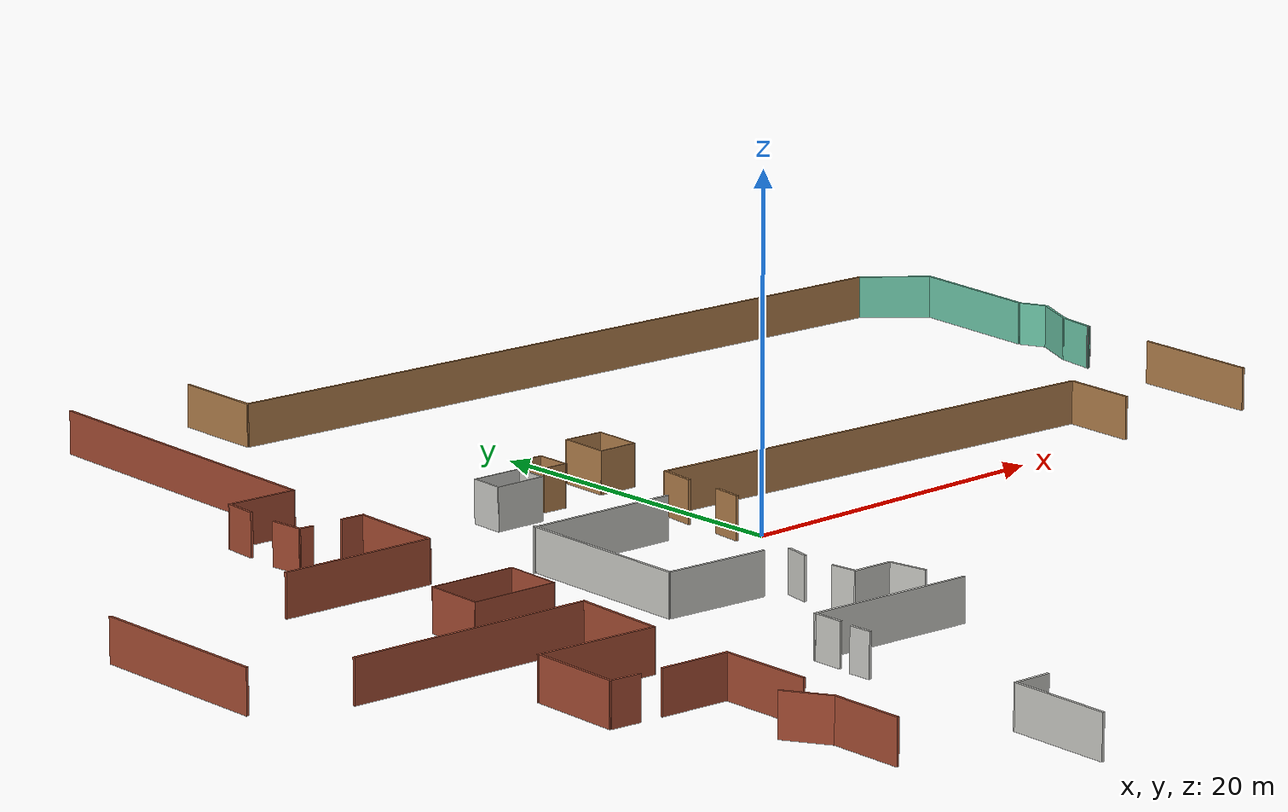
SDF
<?xml version='1.0'?>
<sdf version='1.6'>
  <model name='riseholme_encolsure'>
    <pose frame=''>-0.148903 -0.384247 0 0 -0 0</pose>
    <link name='Wall_10'>
      <collision name='Wall_10_Collision'>
        <geometry>
          <box>
            <size>4.40408 0.15 2.5</size>
          </box>
        </geometry>
        <pose frame=''>0 0 1.25 0 -0 0</pose>
      </collision>
      <visual name='Wall_10_Visual'>
        <pose frame=''>0 0 1.25 0 -0 0</pose>
        <geometry>
          <box>
            <size>4.40408 0.15 2.5</size>
          </box>
        </geometry>
        <material>
          <script>
            <uri>file://media/materials/scripts/gazebo.material</uri>
            <name>Gazebo/Grey</name>
          </script>
          <ambient>0.435294 0.796078 0.67451 1</ambient>
        </material>
        <meta>
          <layer>0</layer>
        </meta>
      </visual>
      <pose frame=''>37.9809 28.2217 0 0 -0 -0.71569</pose>
    </link>
    <link name='Wall_100'>
      <collision name='Wall_100_Collision'>
        <geometry>
          <box>
            <size>1.38035 0.15 2.5</size>
          </box>
        </geometry>
        <pose frame=''>0 0 1.25 0 -0 0</pose>
      </collision>
      <visual name='Wall_100_Visual'>
        <pose frame=''>0 0 1.25 0 -0 0</pose>
        <geometry>
          <box>
            <size>1.38035 0.15 2.5</size>
          </box>
        </geometry>
        <material>
          <script>
            <uri>file://media/materials/scripts/gazebo.material</uri>
            <name>Gazebo/CeilingTiled</name>
          </script>
          <ambient>1 1 1 1</ambient>
        </material>
        <meta>
          <layer>0</layer>
        </meta>
      </visual>
      <pose frame=''>-13.3343 -20.6396 0 0 -0 -1.5708</pose>
    </link>
    <link name='Wall_102'>
      <collision name='Wall_102_Collision'>
        <geometry>
          <box>
            <size>5.25909 0.07 2.5</size>
          </box>
        </geometry>
        <pose frame=''>0 0 1.25 0 -0 0</pose>
      </collision>
      <visual name='Wall_102_Visual'>
        <pose frame=''>0 0 1.25 0 -0 0</pose>
        <geometry>
          <box>
            <size>5.25909 0.07 2.5</size>
          </box>
        </geometry>
        <material>
          <script>
            <uri>file://media/materials/scripts/gazebo.material</uri>
            <name>Gazebo/Bricks</name>
          </script>
          <ambient>1 1 1 1</ambient>
        </material>
        <meta>
          <layer>0</layer>
        </meta>
      </visual>
      <pose frame=''>-21.5336 -0.928753 0 0 -0 -0.039709</pose>
    </link>
    <link name='Wall_103'>
      <collision name='Wall_103_Collision'>
        <geometry>
          <box>
            <size>3.49121 0.07 2.5</size>
          </box>
        </geometry>
        <pose frame=''>0 0 1.25 0 -0 0</pose>
      </collision>
      <visual name='Wall_103_Visual'>
        <pose frame=''>0 0 1.25 0 -0 0</pose>
        <geometry>
          <box>
            <size>3.49121 0.07 2.5</size>
          </box>
        </geometry>
        <material>
          <script>
            <uri>file://media/materials/scripts/gazebo.material</uri>
            <name>Gazebo/Bricks</name>
          </script>
          <ambient>1 1 1 1</ambient>
        </material>
        <meta>
          <layer>0</layer>
        </meta>
      </visual>
      <pose frame=''>-19.0441 -2.73925 0 0 -0 -1.63105</pose>
    </link>
    <link name='Wall_104'>
      <collision name='Wall_104_Collision'>
        <geometry>
          <box>
            <size>5.24692 0.07 2.5</size>
          </box>
        </geometry>
        <pose frame=''>0 0 1.25 0 -0 0</pose>
      </collision>
      <visual name='Wall_104_Visual'>
        <pose frame=''>0 0 1.25 0 -0 0</pose>
        <geometry>
          <box>
            <size>5.24692 0.07 2.5</size>
          </box>
        </geometry>
        <material>
          <script>
            <uri>file://media/materials/scripts/gazebo.material</uri>
            <name>Gazebo/Bricks</name>
          </script>
          <ambient>1 1 1 1</ambient>
        </material>
        <meta>
          <layer>0</layer>
        </meta>
      </visual>
      <pose frame=''>-21.7333 -4.34992 0 0 -0 3.10417</pose>
    </link>
    <link name='Wall_105'>
      <collision name='Wall_105_Collision'>
        <geometry>
          <box>
            <size>3.49429 0.07 2.5</size>
          </box>
        </geometry>
        <pose frame=''>0 0 1.25 0 -0 0</pose>
      </collision>
      <visual name='Wall_105_Visual'>
        <pose frame=''>0 0 1.25 0 -0 0</pose>
        <geometry>
          <box>
            <size>3.49429 0.07 2.5</size>
          </box>
        </geometry>
        <material>
          <script>
            <uri>file://media/materials/scripts/gazebo.material</uri>
            <name>Gazebo/Bricks</name>
          </script>
          <ambient>1 1 1 1</ambient>
        </material>
        <meta>
          <layer>0</layer>
        </meta>
      </visual>
      <pose frame=''>-24.2229 -2.53786 0 0 -0 1.51436</pose>
    </link>
    <link name='Wall_11'>
      <collision name='Wall_11_Collision'>
        <geometry>
          <box>
            <size>8.22495 0.15 2.5</size>
          </box>
        </geometry>
        <pose frame=''>0 0 1.25 0 -0 0</pose>
      </collision>
      <visual name='Wall_11_Visual'>
        <pose frame=''>0 0 1.25 0 -0 0</pose>
        <geometry>
          <box>
            <size>8.22495 0.15 2.5</size>
          </box>
        </geometry>
        <material>
          <script>
            <uri>file://media/materials/scripts/gazebo.material</uri>
            <name>Gazebo/Grey</name>
          </script>
          <ambient>0.435294 0.796078 0.67451 1</ambient>
        </material>
        <meta>
          <layer>0</layer>
        </meta>
      </visual>
      <pose frame=''>39.2604 22.8017 0 0 -0 -1.6515</pose>
    </link>
    <link name='Wall_12'>
      <collision name='Wall_12_Collision'>
        <geometry>
          <box>
            <size>1.81774 0.15 2.5</size>
          </box>
        </geometry>
        <pose frame=''>0 0 1.25 0 -0 0</pose>
      </collision>
      <visual name='Wall_12_Visual'>
        <pose frame=''>0 0 1.25 0 -0 0</pose>
        <geometry>
          <box>
            <size>1.81774 0.15 2.5</size>
          </box>
        </geometry>
        <material>
          <script>
            <uri>file://media/materials/scripts/gazebo.material</uri>
            <name>Gazebo/Grey</name>
          </script>
          <ambient>0.435294 0.796078 0.67451 1</ambient>
        </material>
        <meta>
          <layer>0</layer>
        </meta>
      </visual>
      <pose frame=''>39.2604 18.0097 0 0 -0 -1.16969</pose>
    </link>
    <link name='Wall_13'>
      <collision name='Wall_13_Collision'>
        <geometry>
          <box>
            <size>3.14637 0.15 2.5</size>
          </box>
        </geometry>
        <pose frame=''>0 0 1.25 0 -0 0</pose>
      </collision>
      <visual name='Wall_13_Visual'>
        <pose frame=''>0 0 1.25 0 -0 0</pose>
        <geometry>
          <box>
            <size>3.14637 0.15 2.5</size>
          </box>
        </geometry>
        <material>
          <script>
            <uri>file://media/materials/scripts/gazebo.material</uri>
            <name>Gazebo/Grey</name>
          </script>
          <ambient>0.435294 0.796078 0.67451 1</ambient>
        </material>
        <meta>
          <layer>0</layer>
        </meta>
      </visual>
      <pose frame=''>38.9349 15.8932 0 0 -0 -2.02041</pose>
    </link>
    <link name='Wall_14'>
      <collision name='Wall_14_Collision'>
        <geometry>
          <box>
            <size>2.45986 0.15 2.5</size>
          </box>
        </geometry>
        <pose frame=''>0 0 1.25 0 -0 0</pose>
      </collision>
      <visual name='Wall_14_Visual'>
        <pose frame=''>0 0 1.25 0 -0 0</pose>
        <geometry>
          <box>
            <size>2.45986 0.15 2.5</size>
          </box>
        </geometry>
        <material>
          <script>
            <uri>file://media/materials/scripts/gazebo.material</uri>
            <name>Gazebo/Grey</name>
          </script>
          <ambient>0.435294 0.796078 0.67451 1</ambient>
        </material>
        <meta>
          <layer>0</layer>
        </meta>
      </visual>
      <pose frame=''>38.0974 13.4042 0 0 -0 -1.73296</pose>
    </link>
    <link name='Wall_15'>
      <collision name='Wall_15_Collision'>
        <geometry>
          <box>
            <size>0.16 0.15 2.5</size>
          </box>
        </geometry>
        <pose frame=''>0 0 1.25 0 -0 0</pose>
      </collision>
      <visual name='Wall_15_Visual'>
        <pose frame=''>0 0 1.25 0 -0 0</pose>
        <geometry>
          <box>
            <size>0.16 0.15 2.5</size>
          </box>
        </geometry>
        <material>
          <script>
            <uri>file://media/materials/scripts/gazebo.material</uri>
            <name>Gazebo/Grey</name>
          </script>
          <ambient>1 1 1 1</ambient>
        </material>
        <meta>
          <layer>0</layer>
        </meta>
      </visual>
      <pose frame=''>37.9161 12.2642 0 0 -0 -0.015821</pose>
    </link>
    <link name='Wall_17'>
      <collision name='Wall_17_Collision'>
        <geometry>
          <box>
            <size>7.7914 0.15 2.5</size>
          </box>
        </geometry>
        <pose frame=''>0 0 1.25 0 -0 0</pose>
      </collision>
      <visual name='Wall_17_Visual'>
        <pose frame=''>0 0 1.25 0 -0 0</pose>
        <geometry>
          <box>
            <size>7.7914 0.15 2.5</size>
          </box>
        </geometry>
        <material>
          <script>
            <uri>file://media/materials/scripts/gazebo.material</uri>
            <name>Gazebo/Wood</name>
          </script>
          <ambient>1 1 1 1</ambient>
        </material>
        <meta>
          <layer>0</layer>
        </meta>
      </visual>
      <pose frame=''>37.7484 3.75021 0 0 -0 -1.62562</pose>
    </link>
    <link name='Wall_19'>
      <collision name='Wall_19_Collision'>
        <geometry>
          <box>
            <size>4.48297 0.15 2.5</size>
          </box>
        </geometry>
        <pose frame=''>0 0 1.25 0 -0 0</pose>
      </collision>
      <visual name='Wall_19_Visual'>
        <pose frame=''>0 0 1.25 0 -0 0</pose>
        <geometry>
          <box>
            <size>4.48297 0.15 2.5</size>
          </box>
        </geometry>
        <material>
          <script>
            <uri>file://media/materials/scripts/gazebo.material</uri>
            <name>Gazebo/Wood</name>
          </script>
          <ambient>1 1 1 1</ambient>
        </material>
        <meta>
          <layer>0</layer>
        </meta>
      </visual>
      <pose frame=''>28.3339 2.41776 0 0 -0 1.51709</pose>
    </link>
    <link name='Wall_20'>
      <collision name='Wall_20_Collision'>
        <geometry>
          <box>
            <size>29.5845 0.15 2.5</size>
          </box>
        </geometry>
        <pose frame=''>0 0 1.25 0 -0 0</pose>
      </collision>
      <visual name='Wall_20_Visual'>
        <pose frame=''>0 0 1.25 0 -0 0</pose>
        <geometry>
          <box>
            <size>29.5845 0.15 2.5</size>
          </box>
        </geometry>
        <material>
          <script>
            <uri>file://media/materials/scripts/gazebo.material</uri>
            <name>Gazebo/Wood</name>
          </script>
          <ambient>1 1 1 1</ambient>
        </material>
        <meta>
          <layer>0</layer>
        </meta>
      </visual>
      <pose frame=''>13.7719 5.65117 0 0 -0 3.06882</pose>
    </link>
    <link name='Wall_21'>
      <collision name='Wall_21_Collision'>
        <geometry>
          <box>
            <size>2.21023 0.15 2.5</size>
          </box>
        </geometry>
        <pose frame=''>0 0 1.25 0 -0 0</pose>
      </collision>
      <visual name='Wall_21_Visual'>
        <pose frame=''>0 0 1.25 0 -0 0</pose>
        <geometry>
          <box>
            <size>2.21023 0.15 2.5</size>
          </box>
        </geometry>
        <material>
          <script>
            <uri>file://media/materials/scripts/gazebo.material</uri>
            <name>Gazebo/Wood</name>
          </script>
          <ambient>1 1 1 1</ambient>
        </material>
        <meta>
          <layer>0</layer>
        </meta>
      </visual>
      <pose frame=''>-1.02272 5.6977 0 0 -0 -1.68395</pose>
    </link>
    <link name='Wall_23'>
      <collision name='Wall_23_Collision'>
        <geometry>
          <box>
            <size>1.78894 0.15 2.5</size>
          </box>
        </geometry>
        <pose frame=''>0 0 1.25 0 -0 0</pose>
      </collision>
      <visual name='Wall_23_Visual'>
        <pose frame=''>0 0 1.25 0 -0 0</pose>
        <geometry>
          <box>
            <size>1.78894 0.15 2.5</size>
          </box>
        </geometry>
        <material>
          <script>
            <uri>file://media/materials/scripts/gazebo.material</uri>
            <name>Gazebo/Wood</name>
          </script>
          <ambient>1 1 1 1</ambient>
        </material>
        <meta>
          <layer>0</layer>
        </meta>
      </visual>
      <pose frame=''>-1.32513 1.53381 0 0 -0 -1.68459</pose>
    </link>
    <link name='Wall_25'>
      <collision name='Wall_25_Collision'>
        <geometry>
          <box>
            <size>9.22979 0.15 2.5</size>
          </box>
        </geometry>
        <pose frame=''>0 0 1.25 0 -0 0</pose>
      </collision>
      <visual name='Wall_25_Visual'>
        <pose frame=''>0 0 1.25 0 -0 0</pose>
        <geometry>
          <box>
            <size>9.22979 0.15 2.5</size>
          </box>
        </geometry>
        <material>
          <script>
            <uri>file://media/materials/scripts/gazebo.material</uri>
            <name>Gazebo/CeilingTiled</name>
          </script>
          <ambient>1 1 1 1</ambient>
        </material>
        <meta>
          <layer>0</layer>
        </meta>
      </visual>
      <pose frame=''>-8.65264 3.41803 0 0 -0 3.10059</pose>
    </link>
    <link name='Wall_28'>
      <collision name='Wall_28_Collision'>
        <geometry>
          <box>
            <size>20.7055 0.15 2.5</size>
          </box>
        </geometry>
        <pose frame=''>0 0 1.25 0 -0 0</pose>
      </collision>
      <visual name='Wall_28_Visual'>
        <pose frame=''>0 0 1.25 0 -0 0</pose>
        <geometry>
          <box>
            <size>20.7055 0.15 2.5</size>
          </box>
        </geometry>
        <material>
          <script>
            <uri>file://media/materials/scripts/gazebo.material</uri>
            <name>Gazebo/Bricks</name>
          </script>
          <ambient>1 1 1 1</ambient>
        </material>
        <meta>
          <layer>0</layer>
        </meta>
      </visual>
      <pose frame=''>-17.2596 27.7733 0 0 -0 -1.63194</pose>
    </link>
    <link name='Wall_29'>
      <collision name='Wall_29_Collision'>
        <geometry>
          <box>
            <size>4.29716 0.15 2.5</size>
          </box>
        </geometry>
        <pose frame=''>0 0 1.25 0 -0 0</pose>
      </collision>
      <visual name='Wall_29_Visual'>
        <pose frame=''>0 0 1.25 0 -0 0</pose>
        <geometry>
          <box>
            <size>4.29716 0.15 2.5</size>
          </box>
        </geometry>
        <material>
          <script>
            <uri>file://media/materials/scripts/gazebo.material</uri>
            <name>Gazebo/Bricks</name>
          </script>
          <ambient>1 1 1 1</ambient>
        </material>
        <meta>
          <layer>0</layer>
        </meta>
      </visual>
      <pose frame=''>-19.958 17.6311 0 0 -0 3.08547</pose>
    </link>
    <link name='Wall_30'>
      <collision name='Wall_30_Collision'>
        <geometry>
          <box>
            <size>2.06654 0.15 2.5</size>
          </box>
        </geometry>
        <pose frame=''>0 0 1.25 0 -0 0</pose>
      </collision>
      <visual name='Wall_30_Visual'>
        <pose frame=''>0 0 1.25 0 -0 0</pose>
        <geometry>
          <box>
            <size>2.06654 0.15 2.5</size>
          </box>
        </geometry>
        <material>
          <script>
            <uri>file://media/materials/scripts/gazebo.material</uri>
            <name>Gazebo/Bricks</name>
          </script>
          <ambient>1 1 1 1</ambient>
        </material>
        <meta>
          <layer>0</layer>
        </meta>
      </visual>
      <pose frame=''>-22.1213 16.7937 0 0 -0 -1.66805</pose>
    </link>
    <link name='Wall_32'>
      <collision name='Wall_32_Collision'>
        <geometry>
          <box>
            <size>2.10622 0.15 2.5</size>
          </box>
        </geometry>
        <pose frame=''>0 0 1.25 0 -0 0</pose>
      </collision>
      <visual name='Wall_32_Visual'>
        <pose frame=''>0 0 1.25 0 -0 0</pose>
        <geometry>
          <box>
            <size>2.10622 0.15 2.5</size>
          </box>
        </geometry>
        <material>
          <script>
            <uri>file://media/materials/scripts/gazebo.material</uri>
            <name>Gazebo/Bricks</name>
          </script>
          <ambient>1 1 1 1</ambient>
        </material>
        <meta>
          <layer>0</layer>
        </meta>
      </visual>
      <pose frame=''>-22.3539 12.7228 0 0 -0 -1.52321</pose>
    </link>
    <link name='Wall_33'>
      <collision name='Wall_33_Collision'>
        <geometry>
          <box>
            <size>0.900176 0.15 2.5</size>
          </box>
        </geometry>
        <pose frame=''>0 0 1.25 0 -0 0</pose>
      </collision>
      <visual name='Wall_33_Visual'>
        <pose frame=''>0 0 1.25 0 -0 0</pose>
        <geometry>
          <box>
            <size>0.900176 0.15 2.5</size>
          </box>
        </geometry>
        <material>
          <script>
            <uri>file://media/materials/scripts/gazebo.material</uri>
            <name>Gazebo/Bricks</name>
          </script>
          <ambient>1 1 1 1</ambient>
        </material>
        <meta>
          <layer>0</layer>
        </meta>
      </visual>
      <pose frame=''>-21.9352 11.6993 0 0 -0 -0.124355</pose>
    </link>
    <link name='Wall_35'>
      <collision name='Wall_35_Collision'>
        <geometry>
          <box>
            <size>1.5024 0.15 2.5</size>
          </box>
        </geometry>
        <pose frame=''>0 0 1.25 0 -0 0</pose>
      </collision>
      <visual name='Wall_35_Visual'>
        <pose frame=''>0 0 1.25 0 -0 0</pose>
        <geometry>
          <box>
            <size>1.5024 0.15 2.5</size>
          </box>
        </geometry>
        <material>
          <script>
            <uri>file://media/materials/scripts/gazebo.material</uri>
            <name>Gazebo/Bricks</name>
          </script>
          <ambient>1 1 1 1</ambient>
        </material>
        <meta>
          <layer>0</layer>
        </meta>
      </visual>
      <pose frame=''>-18.8879 11.5132 0 0 -0 -0.068856</pose>
    </link>
    <link name='Wall_36'>
      <collision name='Wall_36_Collision'>
        <geometry>
          <box>
            <size>5.83811 0.15 2.5</size>
          </box>
        </geometry>
        <pose frame=''>0 0 1.25 0 -0 0</pose>
      </collision>
      <visual name='Wall_36_Visual'>
        <pose frame=''>0 0 1.25 0 -0 0</pose>
        <geometry>
          <box>
            <size>5.83811 0.15 2.5</size>
          </box>
        </geometry>
        <material>
          <script>
            <uri>file://media/materials/scripts/gazebo.material</uri>
            <name>Gazebo/Bricks</name>
          </script>
          <ambient>1 1 1 1</ambient>
        </material>
        <meta>
          <layer>0</layer>
        </meta>
      </visual>
      <pose frame=''>-18.3994 8.6287 0 0 -0 -1.63628</pose>
    </link>
    <link name='Wall_44'>
      <collision name='Wall_44_Collision'>
        <geometry>
          <box>
            <size>1.5575 0.07 2.5</size>
          </box>
        </geometry>
        <pose frame=''>0 0 1.25 0 -0 0</pose>
      </collision>
      <visual name='Wall_44_Visual'>
        <pose frame=''>0 0 1.25 0 -0 0</pose>
        <geometry>
          <box>
            <size>1.5575 0.07 2.5</size>
          </box>
        </geometry>
        <material>
          <script>
            <uri>file://media/materials/scripts/gazebo.material</uri>
            <name>Gazebo/Wood</name>
          </script>
          <ambient>1 1 1 1</ambient>
        </material>
        <meta>
          <layer>0</layer>
        </meta>
      </visual>
      <pose frame=''>-4.6011 11.5102 0 0 -0 -0.068625</pose>
    </link>
    <link name='Wall_48'>
      <collision name='Wall_48_Collision'>
        <geometry>
          <box>
            <size>2.1141 0.07 2.5</size>
          </box>
        </geometry>
        <pose frame=''>0 0 1.25 0 -0 0</pose>
      </collision>
      <visual name='Wall_48_Visual'>
        <pose frame=''>0 0 1.25 0 -0 0</pose>
        <geometry>
          <box>
            <size>2.1141 0.07 2.5</size>
          </box>
        </geometry>
        <material>
          <script>
            <uri>file://media/materials/scripts/gazebo.material</uri>
            <name>Gazebo/Wood</name>
          </script>
          <ambient>1 1 1 1</ambient>
        </material>
        <meta>
          <layer>0</layer>
        </meta>
      </visual>
      <pose frame=''>-3.8286 12.4807 0 0 -0 1.54095</pose>
    </link>
    <link name='Wall_49'>
      <collision name='Wall_49_Collision'>
        <geometry>
          <box>
            <size>1.51805 0.07 2.5</size>
          </box>
        </geometry>
        <pose frame=''>0 0 1.25 0 -0 0</pose>
      </collision>
      <visual name='Wall_49_Visual'>
        <pose frame=''>0 0 1.25 0 -0 0</pose>
        <geometry>
          <box>
            <size>1.51805 0.07 2.5</size>
          </box>
        </geometry>
        <material>
          <script>
            <uri>file://media/materials/scripts/gazebo.material</uri>
            <name>Gazebo/Wood</name>
          </script>
          <ambient>1 1 1 1</ambient>
        </material>
        <meta>
          <layer>0</layer>
        </meta>
      </visual>
      <pose frame=''>-4.52166 13.5281 0 0 -0 3.10583</pose>
    </link>
    <link name='Wall_5'>
      <collision name='Wall_5_Collision'>
        <geometry>
          <box>
            <size>5.55178 0.15 2.5</size>
          </box>
        </geometry>
        <pose frame=''>0 0 1.25 0 -0 0</pose>
      </collision>
      <visual name='Wall_5_Visual'>
        <pose frame=''>0 0 1.25 0 -0 0</pose>
        <geometry>
          <box>
            <size>5.55178 0.15 2.5</size>
          </box>
        </geometry>
        <material>
          <script>
            <uri>file://media/materials/scripts/gazebo.material</uri>
            <name>Gazebo/Wood</name>
          </script>
          <ambient>1 1 1 1</ambient>
        </material>
        <meta>
          <layer>0</layer>
        </meta>
      </visual>
      <pose frame=''>-8.44986 35.2004 0 0 -0 -1.61387</pose>
    </link>
    <link name='Wall_56'>
      <collision name='Wall_56_Collision'>
        <geometry>
          <box>
            <size>3.10664 0.07 2.5</size>
          </box>
        </geometry>
        <pose frame=''>0 0 1.25 0 -0 0</pose>
      </collision>
      <visual name='Wall_56_Visual'>
        <pose frame=''>0 0 1.25 0 -0 0</pose>
        <geometry>
          <box>
            <size>3.10664 0.07 2.5</size>
          </box>
        </geometry>
        <material>
          <script>
            <uri>file://media/materials/scripts/gazebo.material</uri>
            <name>Gazebo/CeilingTiled</name>
          </script>
          <ambient>1 1 1 1</ambient>
        </material>
        <meta>
          <layer>0</layer>
        </meta>
      </visual>
      <pose frame=''>-7.90402 12.4344 0 0 -0 -0.042937</pose>
    </link>
    <link name='Wall_57'>
      <collision name='Wall_57_Collision'>
        <geometry>
          <box>
            <size>2.00785 0.07 2.5</size>
          </box>
        </geometry>
        <pose frame=''>0 0 1.25 0 -0 0</pose>
      </collision>
      <visual name='Wall_57_Visual'>
        <pose frame=''>0 0 1.25 0 -0 0</pose>
        <geometry>
          <box>
            <size>2.00785 0.07 2.5</size>
          </box>
        </geometry>
        <material>
          <script>
            <uri>file://media/materials/scripts/gazebo.material</uri>
            <name>Gazebo/CeilingTiled</name>
          </script>
          <ambient>1 1 1 1</ambient>
        </material>
        <meta>
          <layer>0</layer>
        </meta>
      </visual>
      <pose frame=''>-6.4376 11.4016 0 0 -0 -1.62294</pose>
    </link>
    <link name='Wall_58'>
      <collision name='Wall_58_Collision'>
        <geometry>
          <box>
            <size>3.12574 0.07 2.5</size>
          </box>
        </geometry>
        <pose frame=''>0 0 1.25 0 -0 0</pose>
      </collision>
      <visual name='Wall_58_Visual'>
        <pose frame=''>0 0 1.25 0 -0 0</pose>
        <geometry>
          <box>
            <size>3.12574 0.07 2.5</size>
          </box>
        </geometry>
        <material>
          <script>
            <uri>file://media/materials/scripts/gazebo.material</uri>
            <name>Gazebo/CeilingTiled</name>
          </script>
          <ambient>1 1 1 1</ambient>
        </material>
        <meta>
          <layer>0</layer>
        </meta>
      </visual>
      <pose frame=''>-8.0156 10.4711 0 0 -0 3.11541</pose>
    </link>
    <link name='Wall_59'>
      <collision name='Wall_59_Collision'>
        <geometry>
          <box>
            <size>2.06504 0.07 2.5</size>
          </box>
        </geometry>
        <pose frame=''>0 0 1.25 0 -0 0</pose>
      </collision>
      <visual name='Wall_59_Visual'>
        <pose frame=''>0 0 1.25 0 -0 0</pose>
        <geometry>
          <box>
            <size>2.06504 0.07 2.5</size>
          </box>
        </geometry>
        <material>
          <script>
            <uri>file://media/materials/scripts/gazebo.material</uri>
            <name>Gazebo/CeilingTiled</name>
          </script>
          <ambient>1 1 1 1</ambient>
        </material>
        <meta>
          <layer>0</layer>
        </meta>
      </visual>
      <pose frame=''>-9.48241 11.5097 0 0 -0 1.50992</pose>
    </link>
    <link name='Wall_6'>
      <collision name='Wall_6_Collision'>
        <geometry>
          <box>
            <size>45.1846 0.15 2.5</size>
          </box>
        </geometry>
        <pose frame=''>0 0 1.25 0 -0 0</pose>
      </collision>
      <visual name='Wall_6_Visual'>
        <pose frame=''>0 0 1.25 0 -0 0</pose>
        <geometry>
          <box>
            <size>45.1846 0.15 2.5</size>
          </box>
        </geometry>
        <material>
          <script>
            <uri>file://media/materials/scripts/gazebo.material</uri>
            <name>Gazebo/Wood</name>
          </script>
          <ambient>1 1 1 1</ambient>
        </material>
        <meta>
          <layer>0</layer>
        </meta>
      </visual>
      <pose frame=''>13.9049 31.0596 0 0 -0 -0.0641</pose>
    </link>
    <link name='Wall_61'>
      <collision name='Wall_61_Collision'>
        <geometry>
          <box>
            <size>2.44653 0.07 2.5</size>
          </box>
        </geometry>
        <pose frame=''>0 0 1.25 0 -0 0</pose>
      </collision>
      <visual name='Wall_61_Visual'>
        <pose frame=''>0 0 1.25 0 -0 0</pose>
        <geometry>
          <box>
            <size>2.44653 0.07 2.5</size>
          </box>
        </geometry>
        <material>
          <script>
            <uri>file://media/materials/scripts/gazebo.material</uri>
            <name>Gazebo/Wood</name>
          </script>
          <ambient>1 1 1 1</ambient>
        </material>
        <meta>
          <layer>0</layer>
        </meta>
      </visual>
      <pose frame=''>0.595403 14.8812 0 0 -0 -0.06822</pose>
    </link>
    <link name='Wall_62'>
      <collision name='Wall_62_Collision'>
        <geometry>
          <box>
            <size>2.9539 0.07 2.5</size>
          </box>
        </geometry>
        <pose frame=''>0 0 1.25 0 -0 0</pose>
      </collision>
      <visual name='Wall_62_Visual'>
        <pose frame=''>0 0 1.25 0 -0 0</pose>
        <geometry>
          <box>
            <size>2.9539 0.07 2.5</size>
          </box>
        </geometry>
        <material>
          <script>
            <uri>file://media/materials/scripts/gazebo.material</uri>
            <name>Gazebo/Wood</name>
          </script>
          <ambient>1 1 1 1</ambient>
        </material>
        <meta>
          <layer>0</layer>
        </meta>
      </visual>
      <pose frame=''>1.7059 13.3602 0 0 -0 -1.62283</pose>
    </link>
    <link name='Wall_63'>
      <collision name='Wall_63_Collision'>
        <geometry>
          <box>
            <size>2.45355 0.07 2.5</size>
          </box>
        </geometry>
        <pose frame=''>0 0 1.25 0 -0 0</pose>
      </collision>
      <visual name='Wall_63_Visual'>
        <pose frame=''>0 0 1.25 0 -0 0</pose>
        <geometry>
          <box>
            <size>2.45355 0.07 2.5</size>
          </box>
        </geometry>
        <material>
          <script>
            <uri>file://media/materials/scripts/gazebo.material</uri>
            <name>Gazebo/Wood</name>
          </script>
          <ambient>1 1 1 1</ambient>
        </material>
        <meta>
          <layer>0</layer>
        </meta>
      </visual>
      <pose frame=''>0.439403 11.9547 0 0 -0 3.11265</pose>
    </link>
    <link name='Wall_64'>
      <collision name='Wall_64_Collision'>
        <geometry>
          <box>
            <size>3.04759 0.07 2.5</size>
          </box>
        </geometry>
        <pose frame=''>0 0 1.25 0 -0 0</pose>
      </collision>
      <visual name='Wall_64_Visual'>
        <pose frame=''>0 0 1.25 0 -0 0</pose>
        <geometry>
          <box>
            <size>3.04759 0.07 2.5</size>
          </box>
        </geometry>
        <material>
          <script>
            <uri>file://media/materials/scripts/gazebo.material</uri>
            <name>Gazebo/Wood</name>
          </script>
          <ambient>1 1 1 1</ambient>
        </material>
        <meta>
          <layer>0</layer>
        </meta>
      </visual>
      <pose frame=''>-0.665097 13.4757 0 0 -0 1.51234</pose>
    </link>
    <link name='Wall_66'>
      <collision name='Wall_66_Collision'>
        <geometry>
          <box>
            <size>2.06517 0.07 2.5</size>
          </box>
        </geometry>
        <pose frame=''>0 0 1.25 0 -0 0</pose>
      </collision>
      <visual name='Wall_66_Visual'>
        <pose frame=''>0 0 1.25 0 -0 0</pose>
        <geometry>
          <box>
            <size>2.06517 0.07 2.5</size>
          </box>
        </geometry>
        <material>
          <script>
            <uri>file://media/materials/scripts/gazebo.material</uri>
            <name>Gazebo/Wood</name>
          </script>
          <ambient>1 1 1 1</ambient>
        </material>
        <meta>
          <layer>0</layer>
        </meta>
      </visual>
      <pose frame=''>-5.29416 12.5576 0 0 -0 1.52172</pose>
    </link>
    <link name='Wall_68'>
      <collision name='Wall_68_Collision'>
        <geometry>
          <box>
            <size>9.43343 0.15 2.5</size>
          </box>
        </geometry>
        <pose frame=''>0 0 1.25 0 -0 0</pose>
      </collision>
      <visual name='Wall_68_Visual'>
        <pose frame=''>0 0 1.25 0 -0 0</pose>
        <geometry>
          <box>
            <size>9.43343 0.15 2.5</size>
          </box>
        </geometry>
        <material>
          <script>
            <uri>file://media/materials/scripts/gazebo.material</uri>
            <name>Gazebo/Bricks</name>
          </script>
          <ambient>1 1 1 1</ambient>
        </material>
        <meta>
          <layer>0</layer>
        </meta>
      </visual>
      <pose frame=''>-23.2225 6.00059 0 0 -0 3.09637</pose>
    </link>
    <link name='Wall_70'>
      <collision name='Wall_70_Collision'>
        <geometry>
          <box>
            <size>11.2057 0.15 2.5</size>
          </box>
        </geometry>
        <pose frame=''>0 0 1.25 0 -0 0</pose>
      </collision>
      <visual name='Wall_70_Visual'>
        <pose frame=''>0 0 1.25 0 -0 0</pose>
        <geometry>
          <box>
            <size>11.2057 0.15 2.5</size>
          </box>
        </geometry>
        <material>
          <script>
            <uri>file://media/materials/scripts/gazebo.material</uri>
            <name>Gazebo/Bricks</name>
          </script>
          <ambient>1 1 1 1</ambient>
        </material>
        <meta>
          <layer>0</layer>
        </meta>
      </visual>
      <pose frame=''>-39.3963 0.795734 0 0 -0 -1.61018</pose>
    </link>
    <link name='Wall_72'>
      <collision name='Wall_72_Collision'>
        <geometry>
          <box>
            <size>14.6971 0.15 2.5</size>
          </box>
        </geometry>
        <pose frame=''>0 0 1.25 0 -0 0</pose>
      </collision>
      <visual name='Wall_72_Visual'>
        <pose frame=''>0 0 1.25 0 -0 0</pose>
        <geometry>
          <box>
            <size>14.6971 0.15 2.5</size>
          </box>
        </geometry>
        <material>
          <script>
            <uri>file://media/materials/scripts/gazebo.material</uri>
            <name>Gazebo/Bricks</name>
          </script>
          <ambient>1 1 1 1</ambient>
        </material>
        <meta>
          <layer>0</layer>
        </meta>
      </visual>
      <pose frame=''>-27.4513 -7.47598 0 0 -0 -0.048651</pose>
    </link>
    <link name='Wall_73'>
      <collision name='Wall_73_Collision'>
        <geometry>
          <box>
            <size>5.77205 0.15 2.5</size>
          </box>
        </geometry>
        <pose frame=''>0 0 1.25 0 -0 0</pose>
      </collision>
      <visual name='Wall_73_Visual'>
        <pose frame=''>0 0 1.25 0 -0 0</pose>
        <geometry>
          <box>
            <size>5.77205 0.15 2.5</size>
          </box>
        </geometry>
        <material>
          <script>
            <uri>file://media/materials/scripts/gazebo.material</uri>
            <name>Gazebo/Bricks</name>
          </script>
          <ambient>1 1 1 1</ambient>
        </material>
        <meta>
          <layer>0</layer>
        </meta>
      </visual>
      <pose frame=''>-20.404 -10.6323 0 0 -0 -1.64831</pose>
    </link>
    <link name='Wall_74'>
      <collision name='Wall_74_Collision'>
        <geometry>
          <box>
            <size>7.35391 0.15 2.5</size>
          </box>
        </geometry>
        <pose frame=''>0 0 1.25 0 -0 0</pose>
      </collision>
      <visual name='Wall_74_Visual'>
        <pose frame=''>0 0 1.25 0 -0 0</pose>
        <geometry>
          <box>
            <size>7.35391 0.15 2.5</size>
          </box>
        </geometry>
        <material>
          <script>
            <uri>file://media/materials/scripts/gazebo.material</uri>
            <name>Gazebo/Bricks</name>
          </script>
          <ambient>1 1 1 1</ambient>
        </material>
        <meta>
          <layer>0</layer>
        </meta>
      </visual>
      <pose frame=''>-24.2134 -13.1628 0 0 -0 3.06598</pose>
    </link>
    <link name='Wall_75'>
      <collision name='Wall_75_Collision'>
        <geometry>
          <box>
            <size>5.65602 0.15 2.5</size>
          </box>
        </geometry>
        <pose frame=''>0 0 1.25 0 -0 0</pose>
      </collision>
      <visual name='Wall_75_Visual'>
        <pose frame=''>0 0 1.25 0 -0 0</pose>
        <geometry>
          <box>
            <size>5.65602 0.15 2.5</size>
          </box>
        </geometry>
        <material>
          <script>
            <uri>file://media/materials/scripts/gazebo.material</uri>
            <name>Gazebo/Bricks</name>
          </script>
          <ambient>1 1 1 1</ambient>
        </material>
        <meta>
          <layer>0</layer>
        </meta>
      </visual>
      <pose frame=''>-27.9683 -15.6388 0 0 -0 -1.63013</pose>
    </link>
    <link name='Wall_76'>
      <collision name='Wall_76_Collision'>
        <geometry>
          <box>
            <size>1.89905 0.15 2.5</size>
          </box>
        </geometry>
        <pose frame=''>0 0 1.25 0 -0 0</pose>
      </collision>
      <visual name='Wall_76_Visual'>
        <pose frame=''>0 0 1.25 0 -0 0</pose>
        <geometry>
          <box>
            <size>1.89905 0.15 2.5</size>
          </box>
        </geometry>
        <material>
          <script>
            <uri>file://media/materials/scripts/gazebo.material</uri>
            <name>Gazebo/Bricks</name>
          </script>
          <ambient>1 1 1 1</ambient>
        </material>
        <meta>
          <layer>0</layer>
        </meta>
      </visual>
      <pose frame=''>-27.2608 -18.4686 0 0 -0 -0.093477</pose>
    </link>
    <link name='Wall_78'>
      <collision name='Wall_78_Collision'>
        <geometry>
          <box>
            <size>4.2405 0.15 2.5</size>
          </box>
        </geometry>
        <pose frame=''>0 0 1.25 0 -0 0</pose>
      </collision>
      <visual name='Wall_78_Visual'>
        <pose frame=''>0 0 1.25 0 -0 0</pose>
        <geometry>
          <box>
            <size>4.2405 0.15 2.5</size>
          </box>
        </geometry>
        <material>
          <script>
            <uri>file://media/materials/scripts/gazebo.material</uri>
            <name>Gazebo/Bricks</name>
          </script>
          <ambient>1 1 1 1</ambient>
        </material>
        <meta>
          <layer>0</layer>
        </meta>
      </visual>
      <pose frame=''>-22.8801 -18.7952 0 0 -0 -0.066568</pose>
    </link>
    <link name='Wall_79'>
      <collision name='Wall_79_Collision'>
        <geometry>
          <box>
            <size>5.64876 0.15 2.5</size>
          </box>
        </geometry>
        <pose frame=''>0 0 1.25 0 -0 0</pose>
      </collision>
      <visual name='Wall_79_Visual'>
        <pose frame=''>0 0 1.25 0 -0 0</pose>
        <geometry>
          <box>
            <size>5.64876 0.15 2.5</size>
          </box>
        </geometry>
        <material>
          <script>
            <uri>file://media/materials/scripts/gazebo.material</uri>
            <name>Gazebo/Bricks</name>
          </script>
          <ambient>1 1 1 1</ambient>
        </material>
        <meta>
          <layer>0</layer>
        </meta>
      </visual>
      <pose frame=''>-20.921 -21.6794 0 0 -0 -1.60049</pose>
    </link>
    <link name='Wall_81'>
      <collision name='Wall_81_Collision'>
        <geometry>
          <box>
            <size>2.9514 0.15 2.5</size>
          </box>
        </geometry>
        <pose frame=''>0 0 1.25 0 -0 0</pose>
      </collision>
      <visual name='Wall_81_Visual'>
        <pose frame=''>0 0 1.25 0 -0 0</pose>
        <geometry>
          <box>
            <size>2.9514 0.15 2.5</size>
          </box>
        </geometry>
        <material>
          <script>
            <uri>file://media/materials/scripts/gazebo.material</uri>
            <name>Gazebo/Bricks</name>
          </script>
          <ambient>1 1 1 1</ambient>
        </material>
        <meta>
          <layer>0</layer>
        </meta>
      </visual>
      <pose frame=''>-22.5536 -26.305 0 0 -0 -1.0637</pose>
    </link>
    <link name='Wall_82'>
      <collision name='Wall_82_Collision'>
        <geometry>
          <box>
            <size>4.50659 0.15 2.5</size>
          </box>
        </geometry>
        <pose frame=''>0 0 1.25 0 -0 0</pose>
      </collision>
      <visual name='Wall_82_Visual'>
        <pose frame=''>0 0 1.25 0 -0 0</pose>
        <geometry>
          <box>
            <size>4.50659 0.15 2.5</size>
          </box>
        </geometry>
        <material>
          <script>
            <uri>file://media/materials/scripts/gazebo.material</uri>
            <name>Gazebo/Bricks</name>
          </script>
          <ambient>1 1 1 1</ambient>
        </material>
        <meta>
          <layer>0</layer>
        </meta>
      </visual>
      <pose frame=''>-21.955 -29.7062 0 0 -0 -1.60828</pose>
    </link>
    <link name='Wall_84'>
      <collision name='Wall_84_Collision'>
        <geometry>
          <box>
            <size>6.19934 0.15 2.5</size>
          </box>
        </geometry>
        <pose frame=''>0 0 1.25 0 -0 0</pose>
      </collision>
      <visual name='Wall_84_Visual'>
        <pose frame=''>0 0 1.25 0 -0 0</pose>
        <geometry>
          <box>
            <size>6.19934 0.15 2.5</size>
          </box>
        </geometry>
        <material>
          <script>
            <uri>file://media/materials/scripts/gazebo.material</uri>
            <name>Gazebo/CeilingTiled</name>
          </script>
          <ambient>1 1 1 1</ambient>
        </material>
        <meta>
          <layer>0</layer>
        </meta>
      </visual>
      <pose frame=''>-14.2002 -35.0121 0 0 -0 1.51679</pose>
    </link>
    <link name='Wall_85'>
      <collision name='Wall_85_Collision'>
        <geometry>
          <box>
            <size>2.27304 0.15 2.5</size>
          </box>
        </geometry>
        <pose frame=''>0 0 1.25 0 -0 0</pose>
      </collision>
      <visual name='Wall_85_Visual'>
        <pose frame=''>0 0 1.25 0 -0 0</pose>
        <geometry>
          <box>
            <size>2.27304 0.15 2.5</size>
          </box>
        </geometry>
        <material>
          <script>
            <uri>file://media/materials/scripts/gazebo.material</uri>
            <name>Gazebo/CeilingTiled</name>
          </script>
          <ambient>1 1 1 1</ambient>
        </material>
        <meta>
          <layer>0</layer>
        </meta>
      </visual>
      <pose frame=''>-12.9758 -32.019 0 0 -0 -0.025635</pose>
    </link>
    <link name='Wall_87'>
      <collision name='Wall_87_Collision'>
        <geometry>
          <box>
            <size>10.9517 0.15 2.5</size>
          </box>
        </geometry>
        <pose frame=''>0 0 1.25 0 -0 0</pose>
      </collision>
      <visual name='Wall_87_Visual'>
        <pose frame=''>0 0 1.25 0 -0 0</pose>
        <geometry>
          <box>
            <size>10.9517 0.15 2.5</size>
          </box>
        </geometry>
        <material>
          <script>
            <uri>file://media/materials/scripts/gazebo.material</uri>
            <name>Gazebo/CeilingTiled</name>
          </script>
          <ambient>1 1 1 1</ambient>
        </material>
        <meta>
          <layer>0</layer>
        </meta>
      </visual>
      <pose frame=''>-13.358 -1.71119 0 0 -0 -1.61901</pose>
    </link>
    <link name='Wall_88'>
      <collision name='Wall_88_Collision'>
        <geometry>
          <box>
            <size>6.3199 0.15 2.5</size>
          </box>
        </geometry>
        <pose frame=''>0 0 1.25 0 -0 0</pose>
      </collision>
      <visual name='Wall_88_Visual'>
        <pose frame=''>0 0 1.25 0 -0 0</pose>
        <geometry>
          <box>
            <size>6.3199 0.15 2.5</size>
          </box>
        </geometry>
        <material>
          <script>
            <uri>file://media/materials/scripts/gazebo.material</uri>
            <name>Gazebo/CeilingTiled</name>
          </script>
          <ambient>1 1 1 1</ambient>
        </material>
        <meta>
          <layer>0</layer>
        </meta>
      </visual>
      <pose frame=''>-10.5424 -7.34239 0 0 -0 -0.076772</pose>
    </link>
    <link name='Wall_90'>
      <collision name='Wall_90_Collision'>
        <geometry>
          <box>
            <size>1.55137 0.15 2.5</size>
          </box>
        </geometry>
        <pose frame=''>0 0 1.25 0 -0 0</pose>
      </collision>
      <visual name='Wall_90_Visual'>
        <pose frame=''>0 0 1.25 0 -0 0</pose>
        <geometry>
          <box>
            <size>1.55137 0.15 2.5</size>
          </box>
        </geometry>
        <material>
          <script>
            <uri>file://media/materials/scripts/gazebo.material</uri>
            <name>Gazebo/CeilingTiled</name>
          </script>
          <ambient>1 1 1 1</ambient>
        </material>
        <meta>
          <layer>0</layer>
        </meta>
      </visual>
      <pose frame=''>-6.33083 -8.97496 0 0 -0 -1.77481</pose>
    </link>
    <link name='Wall_92'>
      <collision name='Wall_92_Collision'>
        <geometry>
          <box>
            <size>1.57671 0.15 2.5</size>
          </box>
        </geometry>
        <pose frame=''>0 0 1.25 0 -0 0</pose>
      </collision>
      <visual name='Wall_92_Visual'>
        <pose frame=''>0 0 1.25 0 -0 0</pose>
        <geometry>
          <box>
            <size>1.57671 0.15 2.5</size>
          </box>
        </geometry>
        <material>
          <script>
            <uri>file://media/materials/scripts/gazebo.material</uri>
            <name>Gazebo/CeilingTiled</name>
          </script>
          <ambient>1 1 1 1</ambient>
        </material>
        <meta>
          <layer>0</layer>
        </meta>
      </visual>
      <pose frame=''>-6.59109 -12.6423 0 0 -0 -1.47113</pose>
    </link>
    <link name='Wall_94'>
      <collision name='Wall_94_Collision'>
        <geometry>
          <box>
            <size>2.51794 0.15 2.5</size>
          </box>
        </geometry>
        <pose frame=''>0 0 1.25 0 -0 0</pose>
      </collision>
      <visual name='Wall_94_Visual'>
        <pose frame=''>0 0 1.25 0 -0 0</pose>
        <geometry>
          <box>
            <size>2.51794 0.15 2.5</size>
          </box>
        </geometry>
        <material>
          <script>
            <uri>file://media/materials/scripts/gazebo.material</uri>
            <name>Gazebo/CeilingTiled</name>
          </script>
          <ambient>1 1 1 1</ambient>
        </material>
        <meta>
          <layer>0</layer>
        </meta>
      </visual>
      <pose frame=''>-5.33709 -13.4468 0 0 -0 -0.039979</pose>
    </link>
    <link name='Wall_95'>
      <collision name='Wall_95_Collision'>
        <geometry>
          <box>
            <size>2.39862 0.15 2.5</size>
          </box>
        </geometry>
        <pose frame=''>0 0 1.25 0 -0 0</pose>
      </collision>
      <visual name='Wall_95_Visual'>
        <pose frame=''>0 0 1.25 0 -0 0</pose>
        <geometry>
          <box>
            <size>2.39862 0.15 2.5</size>
          </box>
        </geometry>
        <material>
          <script>
            <uri>file://media/materials/scripts/gazebo.material</uri>
            <name>Gazebo/CeilingTiled</name>
          </script>
          <ambient>1 1 1 1</ambient>
        </material>
        <meta>
          <layer>0</layer>
        </meta>
      </visual>
      <pose frame=''>-3.98844 -14.6062 0 0 -0 -1.42295</pose>
    </link>
    <link name='Wall_97'>
      <collision name='Wall_97_Collision'>
        <geometry>
          <box>
            <size>10.0592 0.15 2.5</size>
          </box>
        </geometry>
        <pose frame=''>0 0 1.25 0 -0 0</pose>
      </collision>
      <visual name='Wall_97_Visual'>
        <pose frame=''>0 0 1.25 0 -0 0</pose>
        <geometry>
          <box>
            <size>10.0592 0.15 2.5</size>
          </box>
        </geometry>
        <material>
          <script>
            <uri>file://media/materials/scripts/gazebo.material</uri>
            <name>Gazebo/CeilingTiled</name>
          </script>
          <ambient>1 1 1 1</ambient>
        </material>
        <meta>
          <layer>0</layer>
        </meta>
      </visual>
      <pose frame=''>-8.20001 -17.5874 0 0 -0 3.07947</pose>
    </link>
    <link name='Wall_98'>
      <collision name='Wall_98_Collision'>
        <geometry>
          <box>
            <size>1.90152 0.15 2.5</size>
          </box>
        </geometry>
        <pose frame=''>0 0 1.25 0 -0 0</pose>
      </collision>
      <visual name='Wall_98_Visual'>
        <pose frame=''>0 0 1.25 0 -0 0</pose>
        <geometry>
          <box>
            <size>1.90152 0.15 2.5</size>
          </box>
        </geometry>
        <material>
          <script>
            <uri>file://media/materials/scripts/gazebo.material</uri>
            <name>Gazebo/CeilingTiled</name>
          </script>
          <ambient>1 1 1 1</ambient>
        </material>
        <meta>
          <layer>0</layer>
        </meta>
      </visual>
      <pose frame=''>-13.1687 -18.1552 0 0 -0 -1.59782</pose>
    </link>
    <static>1</static>
  </model>
</sdf>
